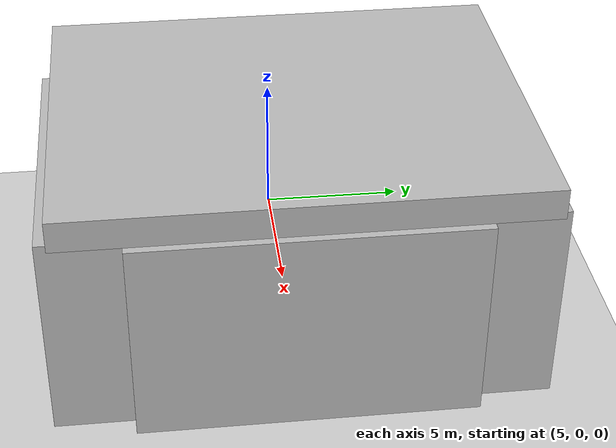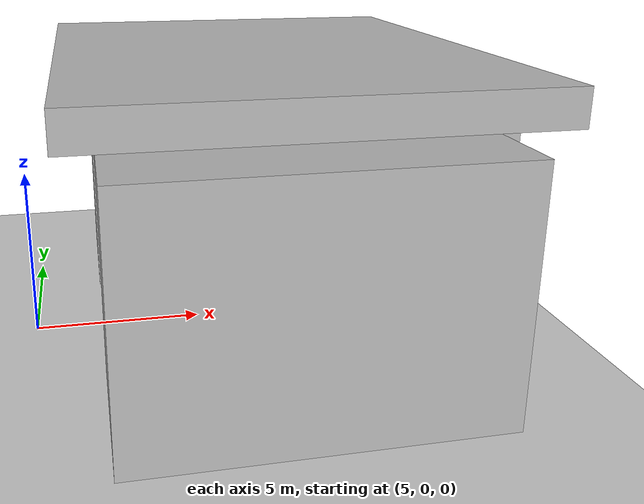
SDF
<sdf version="1.6">
 <world name="default">
  <light name="sun" type="directional">
   <pose>0 0 10 0 -0 0</pose>
   <diffuse>0.8 0.8 0.8 1</diffuse>
   <specular>0.2 0.2 0.2 1</specular>
   <attenuation>
    <range>1000</range>
    <constant>0.9</constant>
    <linear>0.01</linear>
    <quadratic>0.001</quadratic>
   </attenuation>
   <direction>-0.5 0.1 -0.9</direction>
  </light>
  <model name="ground_plane">
   <static>1</static>
   <link name="link">
    <collision name="collision">
     <geometry><plane><normal>0 0 1</normal><size>100 100</size></plane></geometry>
     <surface>
      <contact><collide_bitmask>65535</collide_bitmask></contact>
      <friction><ode><mu>100</mu><mu2>50</mu2></ode></friction>
     </surface>
    </collision>
    <visual name="visual">
     <cast_shadows>0</cast_shadows>
     <geometry><plane><normal>0 0 1</normal><size>100 100</size></plane></geometry>
     <material>
      <script><uri>file://media/materials/scripts/gazebo.material</uri><name>Gazebo/Grey</name></script>
     </material>
    </visual>
   </link>
  </model>
  <physics name="default_physics" default="0" type="ode">
   <ode>
    <solver>
     <type>quick</type>
     <iters>10</iters>
     <sor>1.3</sor>
     <use_dynamic_moi_rescaling>0</use_dynamic_moi_rescaling>
    </solver>
    <constraints>
     <cfm>0</cfm>
     <erp>0.2</erp>
     <contact_max_correcting_vel>100</contact_max_correcting_vel>
     <contact_surface_layer>0.001</contact_surface_layer>
    </constraints>
   </ode>
   <max_step_size>0.004</max_step_size>
   <real_time_factor>1</real_time_factor>
   <real_time_update_rate>250</real_time_update_rate>
  </physics>
  <model name="box1">
   <pose>11.99439 5.51438 3.49944 -4e-06 -8.1e-05 -0.000163</pose>
   <link name="link">
    <collision name="collision"><geometry><box><size>10 5 7</size></box></geometry></collision>
    <visual name="visual"><geometry><box><size>10 5 7</size></box></geometry></visual>
    <inertial>
     <inertia><ixx>1</ixx><ixy>0</ixy><ixz>0</ixz><iyy>1</iyy><iyz>0</iyz><izz>1</izz></inertia>
     <mass>1</mass>
    </inertial>
   </link>
  </model>
  <model name="box2">
   <pose>11.99439 -5.51367 3.49982 -4e-06 -2.9e-05 0.000163</pose>
   <link name="link">
    <collision name="collision"><geometry><box><size>10 5 7</size></box></geometry></collision>
    <visual name="visual"><geometry><box><size>10 5 7</size></box></geometry></visual>
    <inertial>
     <inertia><ixx>1</ixx><ixy>0</ixy><ixz>0</ixz><iyy>1</iyy><iyz>0</iyz><izz>1</izz></inertia>
     <mass>1</mass>
    </inertial>
   </link>
  </model>
  <model name="box3">
   <pose>17.1051 0.072006 3.49992 -4.5e-05 6e-06 -0.000163</pose>
   <link name="link">
    <collision name="collision"><geometry><box><size>1 11 7</size></box></geometry></collision>
    <visual name="visual"><geometry><box><size>1 11 7</size></box></geometry></visual>
    <inertial>
     <inertia><ixx>1</ixx><ixy>0</ixy><ixz>0</ixz><iyy>1</iyy><iyz>0</iyz><izz>1</izz></inertia>
     <mass>1</mass>
    </inertial>
   </link>
  </model>
  <model name="box4">
   <pose>12.06297 -0.047845 8.01989 -4.5e-05 -3.4e-05 0.000163</pose>
   <link name="link">
    <collision name="collision"><geometry><box><size>12 15 1</size></box></geometry></collision>
    <visual name="visual"><geometry><box><size>12 15 1</size></box></geometry></visual>
    <inertial>
     <inertia><ixx>1</ixx><ixy>0</ixy><ixz>0</ixz><iyy>1</iyy><iyz>0</iyz><izz>1</izz></inertia>
     <mass>1</mass>
    </inertial>
   </link>
  </model>
  <gravity>0 0 -9.8066</gravity>
  <magnetic_field>6e-06 2.3e-05 -4.2e-05</magnetic_field>
  <atmosphere type="adiabatic"/>
  <scene><ambient>0.4 0.4 0.4 1</ambient><background>0.7 0.7 0.7 1</background><shadows>1</shadows></scene>
  <audio><device>default</device></audio>
  <spherical_coordinates>
   <surface_model>EARTH_WGS84</surface_model>
   <latitude_deg>0</latitude_deg>
   <longitude_deg>0</longitude_deg>
   <elevation>0</elevation>
   <heading_deg>0</heading_deg>
  </spherical_coordinates>
 </world>
</sdf>
